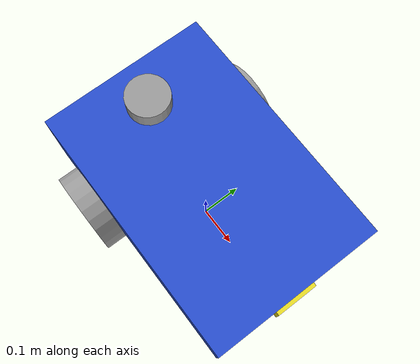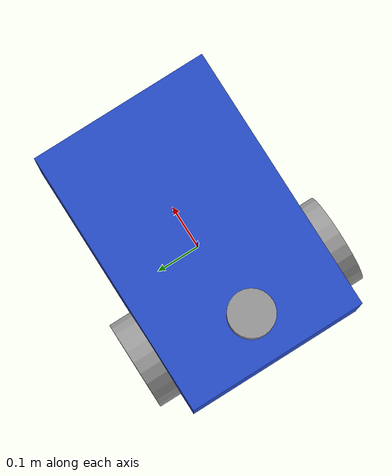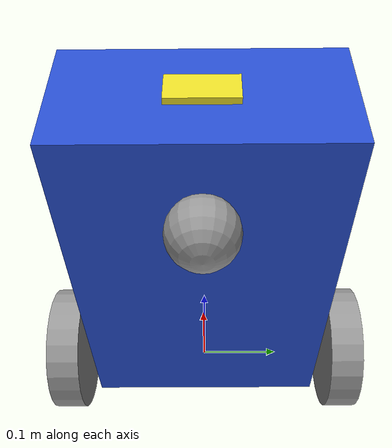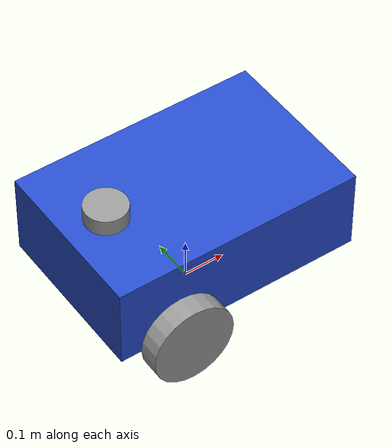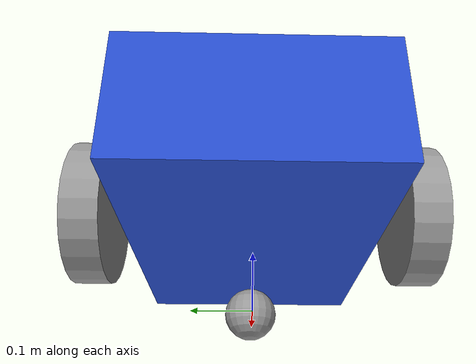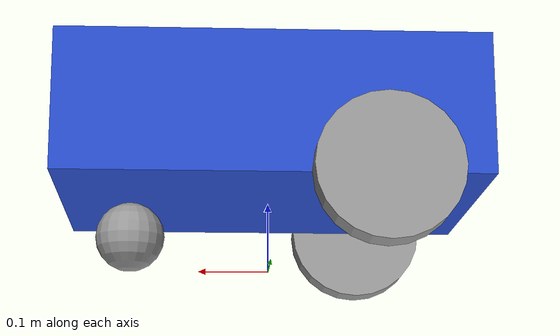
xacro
<?xml version="1.0"?>
<robot name="my_robot" xmlns:xacro="http://www.ros.org/wiki/xacro">

    <xacro:include filename="common_properties.xacro" />
    <xacro:include filename="mobile_base.xacro" />
    <xacro:include filename="mobile_base.ros2_control.xacro" />
    <xacro:include filename="camera.xacro" />
    <xacro:include filename="lidar.xacro" />

</robot>

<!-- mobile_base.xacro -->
<robot xmlns:xacro="http://www.ros.org/wiki/xacro">

    <xacro:property name="base_length" value="0.6" />
    <xacro:property name="base_width" value="0.4" />
    <xacro:property name="base_height" value="0.2" />
    <xacro:property name="wheel_radius" value="0.1" />
    <xacro:property name="wheel_length" value="0.05" />

    <link name="base_footprint" />

    <link name="base_link">
        <visual>
            <geometry>
                <box size="${base_length} ${base_width} ${base_height}" />
            </geometry>
            <origin xyz="0 0 ${base_height / 2.0}" rpy="0 0 0" />
            <material name="blue" />
        </visual>
        <collision>
            <geometry>
                <box size="${base_length} ${base_width} ${base_height}" />
            </geometry>
            <origin xyz="0 0 ${base_height / 2.0}" rpy="0 0 0" />
        </collision>
        <xacro:box_inertia m="5.0" x="${base_length}" y="${base_width}" z="${base_height}"
                           o_xyz="0 0 ${base_height / 2.0}" o_rpy="0 0 0" />
    </link>

    <xacro:macro name="wheel_link" params="prefix">
        <link name="${prefix}_wheel_link">
            <visual>
                <geometry>
                    <cylinder radius="${wheel_radius}" length="${wheel_length}" />

                </geometry>
                <origin xyz="0 0 0" rpy="${pi / 2.0} 0 0" />
                <material name="grey" />
            </visual>
            <collision>
                <geometry>
                    <sphere radius="${wheel_radius}" />
                </geometry>
                <origin xyz="0 0 0" rpy="0 0 0" />
            </collision>
            <xacro:cylinder_inertia m="1.0" r="${wheel_radius}" l="${wheel_length}"
                                    o_xyz="0 0 0" o_rpy="${pi / 2.0} 0 0" />
        </link>
    </xacro:macro>

    <xacro:wheel_link prefix="right" />
    <xacro:wheel_link prefix="left" />

    <link name="caster_wheel_link">
        <visual>
            <geometry>
                <sphere radius="${wheel_radius / 2.0}" />
            </geometry>
            <origin xyz="0 0 0" rpy="0 0 0" />
            <material name="grey" />
        </visual>
        <collision>
            <geometry>
                <sphere radius="${wheel_radius / 2.0}" />
            </geometry>
            <origin xyz="0 0 0" rpy="0 0 0" />
        </collision>
        <xacro:sphere_inertia m="0.5" r="${wheel_radius / 2.0}"
                              o_xyz="0 0 0" o_rpy="0 0 0" />
    </link>

    <joint name="base_joint" type="fixed">
        <parent link="base_footprint" />
        <child link="base_link" />
        <origin xyz="0 0 ${wheel_radius}" rpy="0 0 0"/>
    </joint>

    <joint name="base_right_wheel_joint" type="continuous">
        <parent link="base_link" />
        <child link="right_wheel_link" />
        <origin xyz="${-base_length / 4.0} ${-(base_width + wheel_length) / 2.0} 0" rpy="0 0 0" />
        <axis xyz="0 1 0" />
    </joint>

    <joint name="base_left_wheel_joint" type="continuous">
        <parent link="base_link" />
        <child link="left_wheel_link" />
        <origin xyz="${-base_length / 4.0} ${(base_width + wheel_length) / 2.0} 0" rpy="0 0 0" />
        <axis xyz="0 1 0" />
    </joint>

    <joint name="base_caster_wheel_joint" type="fixed">
        <parent link="base_link" />
        <child link="caster_wheel_link" />
        <origin xyz="${base_length / 3.0} 0 ${-wheel_radius / 2.0}" rpy="0 0 0" />
    </joint>

</robot>

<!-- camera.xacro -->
<!-- specifies the XML version being used (1.0) -->
<robot name="my_robot" xmlns:xacro="http://ww.ros.org/wiki/xacro">
    <xacro:property name="camera_length" value="0.01" />
    <xacro:property name="camera_width" value="0.1" />
    <xacro:property name="camera_height" value="0.05" />

    <link name="camera_link">
        <visual>
            <geometry>
                <box size="${camera_length} ${camera_width} ${camera_height}" />
            </geometry>
            <material name="yellow"/>
        </visual>
        <collision>
            <geometry>
                <box size="${camera_length} ${camera_width} ${camera_height}" />
            </geometry>
        </collision>
        <xacro:box_inertia m="0.1" x="${camera_length}" y="${camera_width}" z="${camera_height}"
                           o_xyz="0 0 0" o_rpy="0 0 0" />
    </link>
    <joint name="base_camera_joint" type="fixed">
        <parent link="base_link" />
        <child link="camera_link" />
        <origin xyz="${(base_length + camera_length) / 2.0} 0 ${base_height / 2.0}" rpy="0 0 0" />
    </joint>
    <link name="camera_link_optical" />
    <joint name="camera_optical_joint" type="fixed">
        <origin xyz="0 0 0" rpy="${-pi/2} 0 ${-pi/2}"/>
        <parent link="camera_link"/>
        <child link="camera_link_optical"/>
    </joint>
    <gazebo reference="camera_link">
        <sensor name="camera" type="camera">
            <camera>
                <horizontal_fov>1.3962634</horizontal_fov>
                <image>
                    <width>640</width>
                    <height>480</height>
                    <format>R8G8B8</format>
                </image>
                <clip>
                    <near>0.1</near>
                    <far>15</far>
                </clip>
                <noise>
                    <type>gaussian</type>
                    <mean>0.0</mean>
                    <stddev>0.007</stddev>
                </noise>
                <optical_frame_id>camera_link_optical</optical_frame_id>
                <camera_info_topic>camera/camera_info</camera_info_topic>
            </camera>
            <always_on>1</always_on>
            <update_rate>20</update_rate>
            <visualize>true</visualize>
            <topic>camera/image_raw</topic>
        </sensor>
    </gazebo>
</robot>

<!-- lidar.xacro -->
<!-- specifies the XML version being used (1.0) -->
<robot name="my_robot" xmlns:xacro="http://ww.ros.org/wiki/xacro">
    <xacro:property name="laser_radius" value="0.05" />
    <xacro:property name="laser_length" value="0.04" />
    <link name="laser_link">
        <visual>
            <geometry>
                <cylinder radius="${laser_radius}" length="${laser_length}" />
            </geometry>
            <material name="grey"/>
        </visual>
        <collision>
            <geometry>
                <cylinder radius="${laser_radius}" length="${laser_length}" />
            </geometry>
        </collision>
        <xacro:cylinder_inertia m="0.1" r="${laser_radius}" l="${laser_length}"
                                    o_xyz="0 0 0" o_rpy="0 0 0" />
    </link>
    <joint name="base_laser_joint" type="fixed">
        <parent link="base_link"/>
        <child link="laser_link"/>
        <origin xyz="-${base_length / 3.0} 0 ${base_height + (laser_length / 2.0)}" rpy="0 0 ${pi}"/>
    </joint>
    <gazebo reference="laser_link">
        <sensor name="laser_sensor" type="gpu_lidar">
            <pose>0 0 0 0 0 0</pose>
            <topic>scan</topic>
            <visualize>true</visualize>
            <update_rate>10</update_rate>
            <ray>
                <scan>
                    <horizontal>
                        <samples>360</samples>
                        <resolution>1</resolution>
                        <min_angle>-3.14159</min_angle>
                        <max_angle>3.14159</max_angle>
                    </horizontal>
                </scan>
                <range>
                    <min>0.1</min>
                    <max>10.0</max>
                    <resolution>0.01</resolution>
                </range>
            </ray>
        </sensor>
    </gazebo>

</robot>
